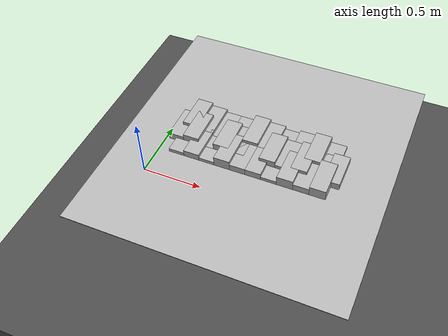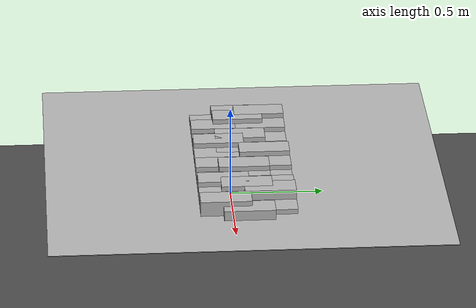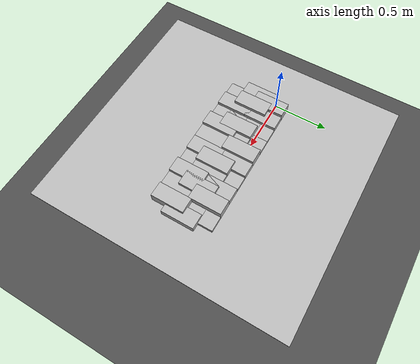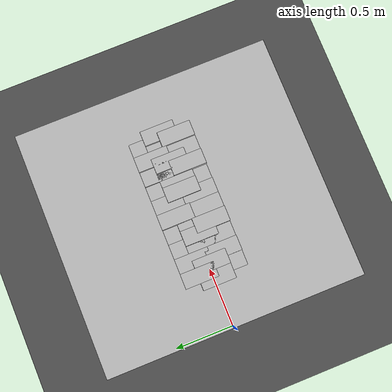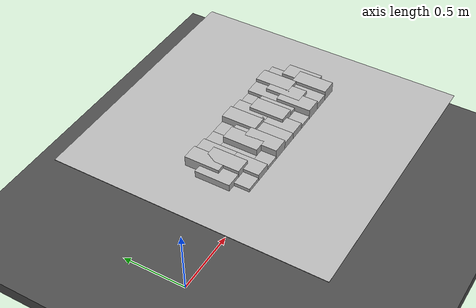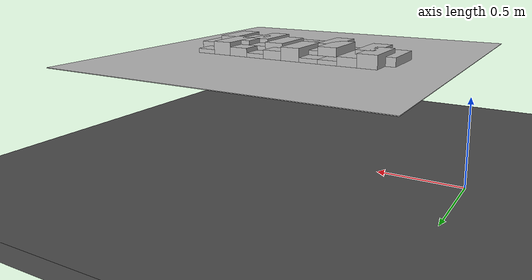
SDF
<sdf version="1.6">
 <world name="default">
  <model name="ground_plane">
   <static>1</static>
   <link name="link">
    <collision name="collision">
     <geometry><plane><normal>0 0 1</normal><size>100 100</size></plane></geometry>
     <surface><friction><ode><mu>100</mu><mu2>50</mu2></ode></friction></surface>
    </collision>
    <visual name="visual">
     <cast_shadows>0</cast_shadows>
     <geometry><plane><normal>0 0 1</normal><size>100 100</size></plane></geometry>
     <material>
      <script><uri>file://media/materials/scripts/gazebo.material</uri><name>Gazebo/Grey</name></script>
     </material>
    </visual>
   </link>
  </model>
  <model name="frc2016_roughterrain_0">
   <link name="link_clone_0">
    <pose>1.10114 -0.027351 -0.073164 0 -0 0</pose>
    <inertial>
     <inertia><ixx>nan</ixx><ixy>0</ixy><ixz>0</ixz><iyy>nan</iyy><iyz>0</iyz><izz>nan</izz></inertia>
     <mass>0</mass>
    </inertial>
    <visual name="row1_block4_sm">
     <pose>0.17145 0.1143 0.09698 0 -0 0</pose>
     <geometry><box><size>0.115452 0.257474 0.0254</size></box></geometry>
     <material><shader type="pixel"/></material>
    </visual>
    <visual name="platform">
     <pose>0 0 0.08269 0 -0 0</pose>
     <geometry><box><size>1.91826 2.01688 0.003175</size></box></geometry>
     <material><shader type="pixel"/></material>
    </visual>
    <visual name="row1_block1_sm">
     <pose>0.51435 0.1143 0.09698 0 -0 0</pose>
     <geometry><box><size>0.115452 0.257474 0.0254</size></box></geometry>
     <material><shader type="pixel"/></material>
    </visual>
    <visual name="row1_block3_md">
     <pose>0.28575 0.1143 0.10968 0 -0 0</pose>
     <geometry><box><size>0.115452 0.257474 0.0508</size></box></geometry>
     <material><shader type="pixel"/></material>
    </visual>
    <visual name="row1_block2_lg">
     <pose>0.40005 0.1143 0.12238 0 -0 0</pose>
     <geometry><box><size>0.115452 0.257474 0.0762</size></box></geometry>
     <material><shader type="pixel"/></material>
    </visual>
    <visual name="row1_block5_md">
     <pose>0.05715 0.1143 0.10968 0 -0 0</pose>
     <geometry><box><size>0.115452 0.257474 0.0508</size></box></geometry>
     <material><shader type="pixel"/></material>
    </visual>
    <visual name="row1_block6_lg">
     <pose>-0.05715 0.1143 0.12238 0 -0 0</pose>
     <geometry><box><size>0.115452 0.257474 0.0762</size></box></geometry>
     <material><shader type="pixel"/></material>
    </visual>
    <visual name="row1_block7_sm">
     <pose>-0.17145 0.1143 0.09698 0 -0 0</pose>
     <geometry><box><size>0.115452 0.257474 0.0254</size></box></geometry>
     <material><shader type="pixel"/></material>
    </visual>
    <visual name="row1_block8_sm">
     <pose>-0.28575 0.1143 0.09698 0 -0 0</pose>
     <geometry><box><size>0.115452 0.257474 0.0254</size></box></geometry>
     <material><shader type="pixel"/></material>
    </visual>
    <visual name="row1_block9_md">
     <pose>-0.40005 0.1143 0.10968 0 -0 0</pose>
     <geometry><box><size>0.115452 0.257474 0.0508</size></box></geometry>
     <material><shader type="pixel"/></material>
    </visual>
    <visual name="row1_block10_lg">
     <pose>-0.51435 0.1143 0.12238 0 -0 0</pose>
     <geometry><box><size>0.115452 0.257474 0.0762</size></box></geometry>
     <material><shader type="pixel"/></material>
    </visual>
    <visual name="row2_block1_md">
     <pose>0.5715 0 0.10968 0 -0 0</pose>
     <geometry><box><size>0.115452 0.257474 0.0508</size></box></geometry>
     <material><shader type="pixel"/></material>
    </visual>
    <visual name="row2_block2_sm">
     <pose>0.4572 0 0.09698 0 -0 0</pose>
     <geometry><box><size>0.115452 0.257474 0.0254</size></box></geometry>
     <material><shader type="pixel"/></material>
    </visual>
    <visual name="row2_block3_lg">
     <pose>0.3429 0 0.12238 0 -0 0</pose>
     <geometry><box><size>0.115452 0.257474 0.0762</size></box></geometry>
     <material><shader type="pixel"/></material>
    </visual>
    <visual name="row2_block4_md">
     <pose>0.2286 0 0.10968 0 -0 0</pose>
     <geometry><box><size>0.115452 0.257474 0.0508</size></box></geometry>
     <material><shader type="pixel"/></material>
    </visual>
    <visual name="row2_block5_lg">
     <pose>0.1143 0 0.12238 0 -0 0</pose>
     <geometry><box><size>0.115452 0.257474 0.0762</size></box></geometry>
     <material><shader type="pixel"/></material>
    </visual>
    <visual name="row2_block6_sm">
     <pose>0 0 0.09698 0 -0 0</pose>
     <geometry><box><size>0.115452 0.257474 0.0254</size></box></geometry>
     <material><shader type="pixel"/></material>
    </visual>
    <visual name="row2_block7_md">
     <pose>-0.1143 0 0.10968 0 -0 0</pose>
     <geometry><box><size>0.115452 0.257474 0.0508</size></box></geometry>
     <material><shader type="pixel"/></material>
    </visual>
    <visual name="row2_block8_lg">
     <pose>-0.2286 0 0.12238 0 -0 0</pose>
     <geometry><box><size>0.115452 0.257474 0.0762</size></box></geometry>
     <material><shader type="pixel"/></material>
    </visual>
    <visual name="row2_block9_sm">
     <pose>-0.3429 0 0.09698 0 -0 0</pose>
     <geometry><box><size>0.115452 0.257474 0.0254</size></box></geometry>
     <material><shader type="pixel"/></material>
    </visual>
    <visual name="row2_block10_lg">
     <pose>-0.4572 0 0.12238 0 -0 0</pose>
     <geometry><box><size>0.115452 0.257474 0.0762</size></box></geometry>
     <material><shader type="pixel"/></material>
    </visual>
    <visual name="row2_block11_md">
     <pose>-0.5715 0 0.10968 0 -0 0</pose>
     <geometry><box><size>0.115452 0.257474 0.0508</size></box></geometry>
     <material><shader type="pixel"/></material>
    </visual>
    <visual name="row3_block2_md">
     <pose>0.40005 -0.1143 0.10968 0 -0 0</pose>
     <geometry><box><size>0.115452 0.257474 0.0508</size></box></geometry>
     <material><shader type="pixel"/></material>
    </visual>
    <visual name="row3_block1_lg">
     <pose>0.51435 -0.1143 0.12238 0 -0 0</pose>
     <geometry><box><size>0.115452 0.257474 0.0762</size></box></geometry>
     <material><shader type="pixel"/></material>
    </visual>
    <visual name="row3_block3_lg">
     <pose>0.28575 -0.1143 0.12238 0 -0 0</pose>
     <geometry><box><size>0.115452 0.257474 0.0762</size></box></geometry>
     <material><shader type="pixel"/></material>
    </visual>
    <visual name="row3_block4_sm">
     <pose>0.17145 -0.1143 0.09698 0 -0 0</pose>
     <geometry><box><size>0.115452 0.257474 0.0254</size></box></geometry>
     <material><shader type="pixel"/></material>
    </visual>
    <visual name="row3_block5_md">
     <pose>0.05715 -0.1143 0.10968 0 -0 0</pose>
     <geometry><box><size>0.115452 0.257474 0.0508</size></box></geometry>
     <material><shader type="pixel"/></material>
    </visual>
    <visual name="row3_block6_md">
     <pose>-0.05715 -0.1143 0.10968 0 -0 0</pose>
     <geometry><box><size>0.115452 0.257474 0.0508</size></box></geometry>
     <material><shader type="pixel"/></material>
    </visual>
    <visual name="row3_block8_sm">
     <pose>-0.28575 -0.1143 0.09698 0 -0 0</pose>
     <geometry><box><size>0.115452 0.257474 0.0254</size></box></geometry>
     <material><shader type="pixel"/></material>
    </visual>
    <visual name="row3_block7_lg">
     <pose>-0.17145 -0.1143 0.12238 0 -0 0</pose>
     <geometry><box><size>0.115452 0.257474 0.0762</size></box></geometry>
     <material><shader type="pixel"/></material>
    </visual>
    <visual name="row3_block9_md">
     <pose>-0.40005 -0.1143 0.10968 0 -0 0</pose>
     <geometry><box><size>0.115452 0.257474 0.0508</size></box></geometry>
     <material><shader type="pixel"/></material>
    </visual>
    <visual name="row3_block10_sm">
     <pose>-0.51435 -0.1143 0.09698 0 -0 0</pose>
     <geometry><box><size>0.115452 0.257474 0.0254</size></box></geometry>
     <material><shader type="pixel"/></material>
    </visual>
    <collision name="row2_block5_lg_0">
     <pose>0.1143 0 0.12238 0 -0 0</pose>
     <geometry><box><size>0.115452 0.257474 0.0762</size></box></geometry>
     <surface>
      <friction>
       <ode><mu>1</mu><mu2>1</mu2><fdir1>0 0 0</fdir1><slip1>0</slip1><slip2>0</slip2></ode>
       <torsional>
        <coefficient>1</coefficient>
        <patch_radius>0</patch_radius>
        <surface_radius>0</surface_radius>
        <use_patch_radius>1</use_patch_radius>
        <ode><slip>0</slip></ode>
       </torsional>
      </friction>
      <bounce><restitution_coefficient>0</restitution_coefficient><threshold>1e+06</threshold></bounce>
      <contact>
       <collide_without_contact>0</collide_without_contact>
       <collide_without_contact_bitmask>1</collide_without_contact_bitmask>
       <collide_bitmask>1</collide_bitmask>
       <ode>
        <soft_cfm>0</soft_cfm>
        <soft_erp>0.2</soft_erp>
        <kp>1e+13</kp>
        <kd>1</kd>
        <max_vel>0.01</max_vel>
        <min_depth>0</min_depth>
       </ode>
       <bullet>
        <split_impulse>1</split_impulse>
        <split_impulse_penetration_threshold>-0.01</split_impulse_penetration_threshold>
        <soft_cfm>0</soft_cfm>
        <soft_erp>0.2</soft_erp>
        <kp>1e+13</kp>
        <kd>1</kd>
       </bullet>
      </contact>
     </surface>
    </collision>
    <collision name="platform_0">
     <pose>0 0 0.08269 0 -0 0</pose>
     <geometry><box><size>1.91826 2.01688 0.003175</size></box></geometry>
     <surface>
      <friction>
       <ode><mu>1</mu><mu2>1</mu2><fdir1>0 0 0</fdir1><slip1>0</slip1><slip2>0</slip2></ode>
       <torsional>
        <coefficient>1</coefficient>
        <patch_radius>0</patch_radius>
        <surface_radius>0</surface_radius>
        <use_patch_radius>1</use_patch_radius>
        <ode><slip>0</slip></ode>
       </torsional>
      </friction>
      <bounce><restitution_coefficient>0</restitution_coefficient><threshold>1e+06</threshold></bounce>
      <contact>
       <collide_without_contact>0</collide_without_contact>
       <collide_without_contact_bitmask>1</collide_without_contact_bitmask>
       <collide_bitmask>1</collide_bitmask>
       <ode>
        <soft_cfm>0</soft_cfm>
        <soft_erp>0.2</soft_erp>
        <kp>1e+13</kp>
        <kd>1</kd>
        <max_vel>0.01</max_vel>
        <min_depth>0</min_depth>
       </ode>
       <bullet>
        <split_impulse>1</split_impulse>
        <split_impulse_penetration_threshold>-0.01</split_impulse_penetration_threshold>
        <soft_cfm>0</soft_cfm>
        <soft_erp>0.2</soft_erp>
        <kp>1e+13</kp>
        <kd>1</kd>
       </bullet>
      </contact>
     </surface>
    </collision>
    <collision name="row1_block1_sm_0">
     <pose>0.51435 0.1143 0.09698 0 -0 0</pose>
     <geometry><box><size>0.115452 0.257474 0.0254</size></box></geometry>
     <surface>
      <friction>
       <ode><mu>1</mu><mu2>1</mu2><fdir1>0 0 0</fdir1><slip1>0</slip1><slip2>0</slip2></ode>
       <torsional>
        <coefficient>1</coefficient>
        <patch_radius>0</patch_radius>
        <surface_radius>0</surface_radius>
        <use_patch_radius>1</use_patch_radius>
        <ode><slip>0</slip></ode>
       </torsional>
      </friction>
      <bounce><restitution_coefficient>0</restitution_coefficient><threshold>1e+06</threshold></bounce>
      <contact>
       <collide_without_contact>0</collide_without_contact>
       <collide_without_contact_bitmask>1</collide_without_contact_bitmask>
       <collide_bitmask>1</collide_bitmask>
       <ode>
        <soft_cfm>0</soft_cfm>
        <soft_erp>0.2</soft_erp>
        <kp>1e+13</kp>
        <kd>1</kd>
        <max_vel>0.01</max_vel>
        <min_depth>0</min_depth>
       </ode>
       <bullet>
        <split_impulse>1</split_impulse>
        <split_impulse_penetration_threshold>-0.01</split_impulse_penetration_threshold>
        <soft_cfm>0</soft_cfm>
        <soft_erp>0.2</soft_erp>
        <kp>1e+13</kp>
        <kd>1</kd>
       </bullet>
      </contact>
     </surface>
    </collision>
    <collision name="row1_block5_md_0">
     <pose>0.05715 0.1143 0.10968 0 -0 0</pose>
     <geometry><box><size>0.115452 0.257474 0.0508</size></box></geometry>
     <surface>
      <friction>
       <ode><mu>1</mu><mu2>1</mu2><fdir1>0 0 0</fdir1><slip1>0</slip1><slip2>0</slip2></ode>
       <torsional>
        <coefficient>1</coefficient>
        <patch_radius>0</patch_radius>
        <surface_radius>0</surface_radius>
        <use_patch_radius>1</use_patch_radius>
        <ode><slip>0</slip></ode>
       </torsional>
      </friction>
      <bounce><restitution_coefficient>0</restitution_coefficient><threshold>1e+06</threshold></bounce>
      <contact>
       <collide_without_contact>0</collide_without_contact>
       <collide_without_contact_bitmask>1</collide_without_contact_bitmask>
       <collide_bitmask>1</collide_bitmask>
       <ode>
        <soft_cfm>0</soft_cfm>
        <soft_erp>0.2</soft_erp>
        <kp>1e+13</kp>
        <kd>1</kd>
        <max_vel>0.01</max_vel>
        <min_depth>0</min_depth>
       </ode>
       <bullet>
        <split_impulse>1</split_impulse>
        <split_impulse_penetration_threshold>-0.01</split_impulse_penetration_threshold>
        <soft_cfm>0</soft_cfm>
        <soft_erp>0.2</soft_erp>
        <kp>1e+13</kp>
        <kd>1</kd>
       </bullet>
      </contact>
     </surface>
    </collision>
    <collision name="row1_block3_md_0">
     <pose>0.28575 0.1143 0.10968 0 -0 0</pose>
     <geometry><box><size>0.115452 0.257474 0.0508</size></box></geometry>
     <surface>
      <friction>
       <ode><mu>1</mu><mu2>1</mu2><fdir1>0 0 0</fdir1><slip1>0</slip1><slip2>0</slip2></ode>
       <torsional>
        <coefficient>1</coefficient>
        <patch_radius>0</patch_radius>
        <surface_radius>0</surface_radius>
        <use_patch_radius>1</use_patch_radius>
        <ode><slip>0</slip></ode>
       </torsional>
      </friction>
      <bounce><restitution_coefficient>0</restitution_coefficient><threshold>1e+06</threshold></bounce>
      <contact>
       <collide_without_contact>0</collide_without_contact>
       <collide_without_contact_bitmask>1</collide_without_contact_bitmask>
       <collide_bitmask>1</collide_bitmask>
       <ode>
        <soft_cfm>0</soft_cfm>
        <soft_erp>0.2</soft_erp>
        <kp>1e+13</kp>
        <kd>1</kd>
        <max_vel>0.01</max_vel>
        <min_depth>0</min_depth>
       </ode>
       <bullet>
        <split_impulse>1</split_impulse>
        <split_impulse_penetration_threshold>-0.01</split_impulse_penetration_threshold>
        <soft_cfm>0</soft_cfm>
        <soft_erp>0.2</soft_erp>
        <kp>1e+13</kp>
        <kd>1</kd>
       </bullet>
      </contact>
     </surface>
    </collision>
    <collision name="row1_block2_lg_0">
     <pose>0.40005 0.1143 0.12238 0 -0 0</pose>
     <geometry><box><size>0.115452 0.257474 0.0762</size></box></geometry>
     <surface>
      <friction>
       <ode><mu>1</mu><mu2>1</mu2><fdir1>0 0 0</fdir1><slip1>0</slip1><slip2>0</slip2></ode>
       <torsional>
        <coefficient>1</coefficient>
        <patch_radius>0</patch_radius>
        <surface_radius>0</surface_radius>
        <use_patch_radius>1</use_patch_radius>
        <ode><slip>0</slip></ode>
       </torsional>
      </friction>
      <bounce><restitution_coefficient>0</restitution_coefficient><threshold>1e+06</threshold></bounce>
      <contact>
       <collide_without_contact>0</collide_without_contact>
       <collide_without_contact_bitmask>1</collide_without_contact_bitmask>
       <collide_bitmask>1</collide_bitmask>
       <ode>
        <soft_cfm>0</soft_cfm>
        <soft_erp>0.2</soft_erp>
        <kp>1e+13</kp>
        <kd>1</kd>
        <max_vel>0.01</max_vel>
        <min_depth>0</min_depth>
       </ode>
       <bullet>
        <split_impulse>1</split_impulse>
        <split_impulse_penetration_threshold>-0.01</split_impulse_penetration_threshold>
        <soft_cfm>0</soft_cfm>
        <soft_erp>0.2</soft_erp>
        <kp>1e+13</kp>
        <kd>1</kd>
       </bullet>
      </contact>
     </surface>
    </collision>
    <collision name="row1_block4_sm_0">
     <pose>0.17145 0.1143 0.09698 0 -0 0</pose>
     <geometry><box><size>0.115452 0.257474 0.0254</size></box></geometry>
     <surface>
      <friction>
       <ode><mu>1</mu><mu2>1</mu2><fdir1>0 0 0</fdir1><slip1>0</slip1><slip2>0</slip2></ode>
       <torsional>
        <coefficient>1</coefficient>
        <patch_radius>0</patch_radius>
        <surface_radius>0</surface_radius>
        <use_patch_radius>1</use_patch_radius>
        <ode><slip>0</slip></ode>
       </torsional>
      </friction>
      <bounce><restitution_coefficient>0</restitution_coefficient><threshold>1e+06</threshold></bounce>
      <contact>
       <collide_without_contact>0</collide_without_contact>
       <collide_without_contact_bitmask>1</collide_without_contact_bitmask>
       <collide_bitmask>1</collide_bitmask>
       <ode>
        <soft_cfm>0</soft_cfm>
        <soft_erp>0.2</soft_erp>
        <kp>1e+13</kp>
        <kd>1</kd>
        <max_vel>0.01</max_vel>
        <min_depth>0</min_depth>
       </ode>
       <bullet>
        <split_impulse>1</split_impulse>
        <split_impulse_penetration_threshold>-0.01</split_impulse_penetration_threshold>
        <soft_cfm>0</soft_cfm>
        <soft_erp>0.2</soft_erp>
        <kp>1e+13</kp>
        <kd>1</kd>
       </bullet>
      </contact>
     </surface>
    </collision>
    <collision name="row1_block6_lg_0">
     <pose>-0.05715 0.1143 0.12238 0 -0 0</pose>
     <geometry><box><size>0.115452 0.257474 0.0762</size></box></geometry>
     <surface>
      <friction>
       <ode><mu>1</mu><mu2>1</mu2><fdir1>0 0 0</fdir1><slip1>0</slip1><slip2>0</slip2></ode>
       <torsional>
        <coefficient>1</coefficient>
        <patch_radius>0</patch_radius>
        <surface_radius>0</surface_radius>
        <use_patch_radius>1</use_patch_radius>
        <ode><slip>0</slip></ode>
       </torsional>
      </friction>
      <bounce><restitution_coefficient>0</restitution_coefficient><threshold>1e+06</threshold></bounce>
      <contact>
       <collide_without_contact>0</collide_without_contact>
       <collide_without_contact_bitmask>1</collide_without_contact_bitmask>
       <collide_bitmask>1</collide_bitmask>
       <ode>
        <soft_cfm>0</soft_cfm>
        <soft_erp>0.2</soft_erp>
        <kp>1e+13</kp>
        <kd>1</kd>
        <max_vel>0.01</max_vel>
        <min_depth>0</min_depth>
       </ode>
       <bullet>
        <split_impulse>1</split_impulse>
        <split_impulse_penetration_threshold>-0.01</split_impulse_penetration_threshold>
        <soft_cfm>0</soft_cfm>
        <soft_erp>0.2</soft_erp>
        <kp>1e+13</kp>
        <kd>1</kd>
       </bullet>
      </contact>
     </surface>
    </collision>
    <collision name="row1_block8_sm_0">
     <pose>-0.28575 0.1143 0.09698 0 -0 0</pose>
     <geometry><box><size>0.115452 0.257474 0.0254</size></box></geometry>
     <surface>
      <friction>
       <ode><mu>1</mu><mu2>1</mu2><fdir1>0 0 0</fdir1><slip1>0</slip1><slip2>0</slip2></ode>
       <torsional>
        <coefficient>1</coefficient>
        <patch_radius>0</patch_radius>
        <surface_radius>0</surface_radius>
        <use_patch_radius>1</use_patch_radius>
        <ode><slip>0</slip></ode>
       </torsional>
      </friction>
      <bounce><restitution_coefficient>0</restitution_coefficient><threshold>1e+06</threshold></bounce>
      <contact>
       <collide_without_contact>0</collide_without_contact>
       <collide_without_contact_bitmask>1</collide_without_contact_bitmask>
       <collide_bitmask>1</collide_bitmask>
       <ode>
        <soft_cfm>0</soft_cfm>
        <soft_erp>0.2</soft_erp>
        <kp>1e+13</kp>
        <kd>1</kd>
        <max_vel>0.01</max_vel>
        <min_depth>0</min_depth>
       </ode>
       <bullet>
        <split_impulse>1</split_impulse>
        <split_impulse_penetration_threshold>-0.01</split_impulse_penetration_threshold>
        <soft_cfm>0</soft_cfm>
        <soft_erp>0.2</soft_erp>
        <kp>1e+13</kp>
        <kd>1</kd>
       </bullet>
      </contact>
     </surface>
    </collision>
    <collision name="row1_block7_sm_0">
     <pose>-0.17145 0.1143 0.09698 0 -0 0</pose>
     <geometry><box><size>0.115452 0.257474 0.0254</size></box></geometry>
     <surface>
      <friction>
       <ode><mu>1</mu><mu2>1</mu2><fdir1>0 0 0</fdir1><slip1>0</slip1><slip2>0</slip2></ode>
       <torsional>
        <coefficient>1</coefficient>
        <patch_radius>0</patch_radius>
        <surface_radius>0</surface_radius>
        <use_patch_radius>1</use_patch_radius>
        <ode><slip>0</slip></ode>
       </torsional>
      </friction>
      <bounce><restitution_coefficient>0</restitution_coefficient><threshold>1e+06</threshold></bounce>
      <contact>
       <collide_without_contact>0</collide_without_contact>
       <collide_without_contact_bitmask>1</collide_without_contact_bitmask>
       <collide_bitmask>1</collide_bitmask>
       <ode>
        <soft_cfm>0</soft_cfm>
        <soft_erp>0.2</soft_erp>
        <kp>1e+13</kp>
        <kd>1</kd>
        <max_vel>0.01</max_vel>
        <min_depth>0</min_depth>
       </ode>
       <bullet>
        <split_impulse>1</split_impulse>
        <split_impulse_penetration_threshold>-0.01</split_impulse_penetration_threshold>
        <soft_cfm>0</soft_cfm>
        <soft_erp>0.2</soft_erp>
        <kp>1e+13</kp>
        <kd>1</kd>
       </bullet>
      </contact>
     </surface>
    </collision>
    <collision name="row1_block10_lg_0">
     <pose>-0.51435 0.1143 0.12238 0 -0 0</pose>
     <geometry><box><size>0.115452 0.257474 0.0762</size></box></geometry>
     <surface>
      <friction>
       <ode><mu>1</mu><mu2>1</mu2><fdir1>0 0 0</fdir1><slip1>0</slip1><slip2>0</slip2></ode>
       <torsional>
        <coefficient>1</coefficient>
        <patch_radius>0</patch_radius>
        <surface_radius>0</surface_radius>
        <use_patch_radius>1</use_patch_radius>
        <ode><slip>0</slip></ode>
       </torsional>
      </friction>
      <bounce><restitution_coefficient>0</restitution_coefficient><threshold>1e+06</threshold></bounce>
      <contact>
       <collide_without_contact>0</collide_without_contact>
       <collide_without_contact_bitmask>1</collide_without_contact_bitmask>
       <collide_bitmask>1</collide_bitmask>
       <ode>
        <soft_cfm>0</soft_cfm>
        <soft_erp>0.2</soft_erp>
        <kp>1e+13</kp>
        <kd>1</kd>
        <max_vel>0.01</max_vel>
        <min_depth>0</min_depth>
       </ode>
       <bullet>
        <split_impulse>1</split_impulse>
        <split_impulse_penetration_threshold>-0.01</split_impulse_penetration_threshold>
        <soft_cfm>0</soft_cfm>
        <soft_erp>0.2</soft_erp>
        <kp>1e+13</kp>
        <kd>1</kd>
       </bullet>
      </contact>
     </surface>
    </collision>
    <collision name="row1_block9_md_0">
     <pose>-0.40005 0.1143 0.10968 0 -0 0</pose>
     <geometry><box><size>0.115452 0.257474 0.0508</size></box></geometry>
     <surface>
      <friction>
       <ode><mu>1</mu><mu2>1</mu2><fdir1>0 0 0</fdir1><slip1>0</slip1><slip2>0</slip2></ode>
       <torsional>
        <coefficient>1</coefficient>
        <patch_radius>0</patch_radius>
        <surface_radius>0</surface_radius>
        <use_patch_radius>1</use_patch_radius>
        <ode><slip>0</slip></ode>
       </torsional>
      </friction>
      <bounce><restitution_coefficient>0</restitution_coefficient><threshold>1e+06</threshold></bounce>
      <contact>
       <collide_without_contact>0</collide_without_contact>
       <collide_without_contact_bitmask>1</collide_without_contact_bitmask>
       <collide_bitmask>1</collide_bitmask>
       <ode>
        <soft_cfm>0</soft_cfm>
        <soft_erp>0.2</soft_erp>
        <kp>1e+13</kp>
        <kd>1</kd>
        <max_vel>0.01</max_vel>
        <min_depth>0</min_depth>
       </ode>
       <bullet>
        <split_impulse>1</split_impulse>
        <split_impulse_penetration_threshold>-0.01</split_impulse_penetration_threshold>
        <soft_cfm>0</soft_cfm>
        <soft_erp>0.2</soft_erp>
        <kp>1e+13</kp>
        <kd>1</kd>
       </bullet>
      </contact>
     </surface>
    </collision>
    <collision name="row2_block4_md_0">
     <pose>0.2286 0 0.10968 0 -0 0</pose>
     <geometry><box><size>0.115452 0.257474 0.0508</size></box></geometry>
     <surface>
      <friction>
       <ode><mu>1</mu><mu2>1</mu2><fdir1>0 0 0</fdir1><slip1>0</slip1><slip2>0</slip2></ode>
       <torsional>
        <coefficient>1</coefficient>
        <patch_radius>0</patch_radius>
        <surface_radius>0</surface_radius>
        <use_patch_radius>1</use_patch_radius>
        <ode><slip>0</slip></ode>
       </torsional>
      </friction>
      <bounce><restitution_coefficient>0</restitution_coefficient><threshold>1e+06</threshold></bounce>
      <contact>
       <collide_without_contact>0</collide_without_contact>
       <collide_without_contact_bitmask>1</collide_without_contact_bitmask>
       <collide_bitmask>1</collide_bitmask>
       <ode>
        <soft_cfm>0</soft_cfm>
        <soft_erp>0.2</soft_erp>
        <kp>1e+13</kp>
        <kd>1</kd>
        <max_vel>0.01</max_vel>
        <min_depth>0</min_depth>
       </ode>
       <bullet>
        <split_impulse>1</split_impulse>
        <split_impulse_penetration_threshold>-0.01</split_impulse_penetration_threshold>
        <soft_cfm>0</soft_cfm>
        <soft_erp>0.2</soft_erp>
        <kp>1e+13</kp>
        <kd>1</kd>
       </bullet>
      </contact>
     </surface>
    </collision>
    <collision name="row2_block1_md_0">
     <pose>0.5715 0 0.10968 0 -0 0</pose>
     <geometry><box><size>0.115452 0.257474 0.0508</size></box></geometry>
     <surface>
      <friction>
       <ode><mu>1</mu><mu2>1</mu2><fdir1>0 0 0</fdir1><slip1>0</slip1><slip2>0</slip2></ode>
       <torsional>
        <coefficient>1</coefficient>
        <patch_radius>0</patch_radius>
        <surface_radius>0</surface_radius>
        <use_patch_radius>1</use_patch_radius>
        <ode><slip>0</slip></ode>
       </torsional>
      </friction>
      <bounce><restitution_coefficient>0</restitution_coefficient><threshold>1e+06</threshold></bounce>
      <contact>
       <collide_without_contact>0</collide_without_contact>
       <collide_without_contact_bitmask>1</collide_without_contact_bitmask>
       <collide_bitmask>1</collide_bitmask>
       <ode>
        <soft_cfm>0</soft_cfm>
        <soft_erp>0.2</soft_erp>
        <kp>1e+13</kp>
        <kd>1</kd>
        <max_vel>0.01</max_vel>
        <min_depth>0</min_depth>
       </ode>
       <bullet>
        <split_impulse>1</split_impulse>
        <split_impulse_penetration_threshold>-0.01</split_impulse_penetration_threshold>
        <soft_cfm>0</soft_cfm>
        <soft_erp>0.2</soft_erp>
        <kp>1e+13</kp>
        <kd>1</kd>
       </bullet>
      </contact>
     </surface>
    </collision>
    <collision name="row2_block2_sm_0">
     <pose>0.4572 0 0.09698 0 -0 0</pose>
     <geometry><box><size>0.115452 0.257474 0.0254</size></box></geometry>
     <surface>
      <friction>
       <ode><mu>1</mu><mu2>1</mu2><fdir1>0 0 0</fdir1><slip1>0</slip1><slip2>0</slip2></ode>
       <torsional>
        <coefficient>1</coefficient>
        <patch_radius>0</patch_radius>
        <surface_radius>0</surface_radius>
        <use_patch_radius>1</use_patch_radius>
        <ode><slip>0</slip></ode>
       </torsional>
      </friction>
      <bounce><restitution_coefficient>0</restitution_coefficient><threshold>1e+06</threshold></bounce>
      <contact>
       <collide_without_contact>0</collide_without_contact>
       <collide_without_contact_bitmask>1</collide_without_contact_bitmask>
       <collide_bitmask>1</collide_bitmask>
       <ode>
        <soft_cfm>0</soft_cfm>
        <soft_erp>0.2</soft_erp>
        <kp>1e+13</kp>
        <kd>1</kd>
        <max_vel>0.01</max_vel>
        <min_depth>0</min_depth>
       </ode>
       <bullet>
        <split_impulse>1</split_impulse>
        <split_impulse_penetration_threshold>-0.01</split_impulse_penetration_threshold>
        <soft_cfm>0</soft_cfm>
        <soft_erp>0.2</soft_erp>
        <kp>1e+13</kp>
        <kd>1</kd>
       </bullet>
      </contact>
     </surface>
    </collision>
    <collision name="row2_block3_lg_0">
     <pose>0.3429 0 0.12238 0 -0 0</pose>
     <geometry><box><size>0.115452 0.257474 0.0762</size></box></geometry>
     <surface>
      <friction>
       <ode><mu>1</mu><mu2>1</mu2><fdir1>0 0 0</fdir1><slip1>0</slip1><slip2>0</slip2></ode>
       <torsional>
        <coefficient>1</coefficient>
        <patch_radius>0</patch_radius>
        <surface_radius>0</surface_radius>
        <use_patch_radius>1</use_patch_radius>
        <ode><slip>0</slip></ode>
       </torsional>
      </friction>
      <bounce><restitution_coefficient>0</restitution_coefficient><threshold>1e+06</threshold></bounce>
      <contact>
       <collide_without_contact>0</collide_without_contact>
       <collide_without_contact_bitmask>1</collide_without_contact_bitmask>
       <collide_bitmask>1</collide_bitmask>
       <ode>
        <soft_cfm>0</soft_cfm>
        <soft_erp>0.2</soft_erp>
        <kp>1e+13</kp>
        <kd>1</kd>
        <max_vel>0.01</max_vel>
        <min_depth>0</min_depth>
       </ode>
       <bullet>
        <split_impulse>1</split_impulse>
        <split_impulse_penetration_threshold>-0.01</split_impulse_penetration_threshold>
        <soft_cfm>0</soft_cfm>
        <soft_erp>0.2</soft_erp>
        <kp>1e+13</kp>
        <kd>1</kd>
       </bullet>
      </contact>
     </surface>
    </collision>
    <collision name="row2_block6_sm_0">
     <pose>0 0 0.09698 0 -0 0</pose>
     <geometry><box><size>0.115452 0.257474 0.0254</size></box></geometry>
     <surface>
      <friction>
       <ode><mu>1</mu><mu2>1</mu2><fdir1>0 0 0</fdir1><slip1>0</slip1><slip2>0</slip2></ode>
       <torsional>
        <coefficient>1</coefficient>
        <patch_radius>0</patch_radius>
        <surface_radius>0</surface_radius>
        <use_patch_radius>1</use_patch_radius>
        <ode><slip>0</slip></ode>
       </torsional>
      </friction>
      <bounce><restitution_coefficient>0</restitution_coefficient><threshold>1e+06</threshold></bounce>
      <contact>
       <collide_without_contact>0</collide_without_contact>
       <collide_without_contact_bitmask>1</collide_without_contact_bitmask>
       <collide_bitmask>1</collide_bitmask>
       <ode>
        <soft_cfm>0</soft_cfm>
        <soft_erp>0.2</soft_erp>
        <kp>1e+13</kp>
        <kd>1</kd>
        <max_vel>0.01</max_vel>
        <min_depth>0</min_depth>
       </ode>
       <bullet>
        <split_impulse>1</split_impulse>
        <split_impulse_penetration_threshold>-0.01</split_impulse_penetration_threshold>
        <soft_cfm>0</soft_cfm>
        <soft_erp>0.2</soft_erp>
        <kp>1e+13</kp>
        <kd>1</kd>
       </bullet>
      </contact>
     </surface>
    </collision>
    <collision name="row2_block7_md_0">
     <pose>-0.1143 0 0.10968 0 -0 0</pose>
     <geometry><box><size>0.115452 0.257474 0.0508</size></box></geometry>
     <surface>
      <friction>
       <ode><mu>1</mu><mu2>1</mu2><fdir1>0 0 0</fdir1><slip1>0</slip1><slip2>0</slip2></ode>
       <torsional>
        <coefficient>1</coefficient>
        <patch_radius>0</patch_radius>
        <surface_radius>0</surface_radius>
        <use_patch_radius>1</use_patch_radius>
        <ode><slip>0</slip></ode>
       </torsional>
      </friction>
      <bounce><restitution_coefficient>0</restitution_coefficient><threshold>1e+06</threshold></bounce>
      <contact>
       <collide_without_contact>0</collide_without_contact>
       <collide_without_contact_bitmask>1</collide_without_contact_bitmask>
       <collide_bitmask>1</collide_bitmask>
       <ode>
        <soft_cfm>0</soft_cfm>
        <soft_erp>0.2</soft_erp>
        <kp>1e+13</kp>
        <kd>1</kd>
        <max_vel>0.01</max_vel>
        <min_depth>0</min_depth>
       </ode>
       <bullet>
        <split_impulse>1</split_impulse>
        <split_impulse_penetration_threshold>-0.01</split_impulse_penetration_threshold>
        <soft_cfm>0</soft_cfm>
        <soft_erp>0.2</soft_erp>
        <kp>1e+13</kp>
        <kd>1</kd>
       </bullet>
      </contact>
     </surface>
    </collision>
    <collision name="row2_block10_lg_0">
     <pose>-0.4572 0 0.12238 0 -0 0</pose>
     <geometry><box><size>0.115452 0.257474 0.0762</size></box></geometry>
     <surface>
      <friction>
       <ode><mu>1</mu><mu2>1</mu2><fdir1>0 0 0</fdir1><slip1>0</slip1><slip2>0</slip2></ode>
       <torsional>
        <coefficient>1</coefficient>
        <patch_radius>0</patch_radius>
        <surface_radius>0</surface_radius>
        <use_patch_radius>1</use_patch_radius>
        <ode><slip>0</slip></ode>
       </torsional>
      </friction>
      <bounce><restitution_coefficient>0</restitution_coefficient><threshold>1e+06</threshold></bounce>
      <contact>
       <collide_without_contact>0</collide_without_contact>
       <collide_without_contact_bitmask>1</collide_without_contact_bitmask>
       <collide_bitmask>1</collide_bitmask>
       <ode>
        <soft_cfm>0</soft_cfm>
        <soft_erp>0.2</soft_erp>
        <kp>1e+13</kp>
        <kd>1</kd>
        <max_vel>0.01</max_vel>
        <min_depth>0</min_depth>
       </ode>
       <bullet>
        <split_impulse>1</split_impulse>
        <split_impulse_penetration_threshold>-0.01</split_impulse_penetration_threshold>
        <soft_cfm>0</soft_cfm>
        <soft_erp>0.2</soft_erp>
        <kp>1e+13</kp>
        <kd>1</kd>
       </bullet>
      </contact>
     </surface>
    </collision>
    <collision name="row2_block8_lg_0">
     <pose>-0.2286 0 0.12238 0 -0 0</pose>
     <geometry><box><size>0.115452 0.257474 0.0762</size></box></geometry>
     <surface>
      <friction>
       <ode><mu>1</mu><mu2>1</mu2><fdir1>0 0 0</fdir1><slip1>0</slip1><slip2>0</slip2></ode>
       <torsional>
        <coefficient>1</coefficient>
        <patch_radius>0</patch_radius>
        <surface_radius>0</surface_radius>
        <use_patch_radius>1</use_patch_radius>
        <ode><slip>0</slip></ode>
       </torsional>
      </friction>
      <bounce><restitution_coefficient>0</restitution_coefficient><threshold>1e+06</threshold></bounce>
      <contact>
       <collide_without_contact>0</collide_without_contact>
       <collide_without_contact_bitmask>1</collide_without_contact_bitmask>
       <collide_bitmask>1</collide_bitmask>
       <ode>
        <soft_cfm>0</soft_cfm>
        <soft_erp>0.2</soft_erp>
        <kp>1e+13</kp>
        <kd>1</kd>
        <max_vel>0.01</max_vel>
        <min_depth>0</min_depth>
       </ode>
       <bullet>
        <split_impulse>1</split_impulse>
        <split_impulse_penetration_threshold>-0.01</split_impulse_penetration_threshold>
        <soft_cfm>0</soft_cfm>
        <soft_erp>0.2</soft_erp>
        <kp>1e+13</kp>
        <kd>1</kd>
       </bullet>
      </contact>
     </surface>
    </collision>
    <collision name="row2_block9_sm_0">
     <pose>-0.3429 0 0.09698 0 -0 0</pose>
     <geometry><box><size>0.115452 0.257474 0.0254</size></box></geometry>
     <surface>
      <friction>
       <ode><mu>1</mu><mu2>1</mu2><fdir1>0 0 0</fdir1><slip1>0</slip1><slip2>0</slip2></ode>
       <torsional>
        <coefficient>1</coefficient>
        <patch_radius>0</patch_radius>
        <surface_radius>0</surface_radius>
        <use_patch_radius>1</use_patch_radius>
        <ode><slip>0</slip></ode>
       </torsional>
      </friction>
      <bounce><restitution_coefficient>0</restitution_coefficient><threshold>1e+06</threshold></bounce>
      <contact>
       <collide_without_contact>0</collide_without_contact>
       <collide_without_contact_bitmask>1</collide_without_contact_bitmask>
       <collide_bitmask>1</collide_bitmask>
       <ode>
        <soft_cfm>0</soft_cfm>
        <soft_erp>0.2</soft_erp>
        <kp>1e+13</kp>
        <kd>1</kd>
        <max_vel>0.01</max_vel>
        <min_depth>0</min_depth>
       </ode>
       <bullet>
        <split_impulse>1</split_impulse>
        <split_impulse_penetration_threshold>-0.01</split_impulse_penetration_threshold>
        <soft_cfm>0</soft_cfm>
        <soft_erp>0.2</soft_erp>
        <kp>1e+13</kp>
        <kd>1</kd>
       </bullet>
      </contact>
     </surface>
    </collision>
    <collision name="row2_block11_md_0">
     <pose>-0.5715 0 0.10968 0 -0 0</pose>
     <geometry><box><size>0.115452 0.257474 0.0508</size></box></geometry>
     <surface>
      <friction>
       <ode><mu>1</mu><mu2>1</mu2><fdir1>0 0 0</fdir1><slip1>0</slip1><slip2>0</slip2></ode>
       <torsional>
        <coefficient>1</coefficient>
        <patch_radius>0</patch_radius>
        <surface_radius>0</surface_radius>
        <use_patch_radius>1</use_patch_radius>
        <ode><slip>0</slip></ode>
       </torsional>
      </friction>
      <bounce><restitution_coefficient>0</restitution_coefficient><threshold>1e+06</threshold></bounce>
      <contact>
       <collide_without_contact>0</collide_without_contact>
       <collide_without_contact_bitmask>1</collide_without_contact_bitmask>
       <collide_bitmask>1</collide_bitmask>
       <ode>
        <soft_cfm>0</soft_cfm>
        <soft_erp>0.2</soft_erp>
        <kp>1e+13</kp>
        <kd>1</kd>
        <max_vel>0.01</max_vel>
        <min_depth>0</min_depth>
       </ode>
       <bullet>
        <split_impulse>1</split_impulse>
        <split_impulse_penetration_threshold>-0.01</split_impulse_penetration_threshold>
        <soft_cfm>0</soft_cfm>
        <soft_erp>0.2</soft_erp>
        <kp>1e+13</kp>
        <kd>1</kd>
       </bullet>
      </contact>
     </surface>
    </collision>
    <collision name="row3_block2_md_0">
     <pose>0.40005 -0.1143 0.10968 0 -0 0</pose>
     <geometry><box><size>0.115452 0.257474 0.0508</size></box></geometry>
     <surface>
      <friction>
       <ode><mu>1</mu><mu2>1</mu2><fdir1>0 0 0</fdir1><slip1>0</slip1><slip2>0</slip2></ode>
       <torsional>
        <coefficient>1</coefficient>
        <patch_radius>0</patch_radius>
        <surface_radius>0</surface_radius>
        <use_patch_radius>1</use_patch_radius>
        <ode><slip>0</slip></ode>
       </torsional>
      </friction>
      <bounce><restitution_coefficient>0</restitution_coefficient><threshold>1e+06</threshold></bounce>
      <contact>
       <collide_without_contact>0</collide_without_contact>
       <collide_without_contact_bitmask>1</collide_without_contact_bitmask>
       <collide_bitmask>1</collide_bitmask>
       <ode>
        <soft_cfm>0</soft_cfm>
        <soft_erp>0.2</soft_erp>
        <kp>1e+13</kp>
        <kd>1</kd>
        <max_vel>0.01</max_vel>
        <min_depth>0</min_depth>
       </ode>
       <bullet>
        <split_impulse>1</split_impulse>
        <split_impulse_penetration_threshold>-0.01</split_impulse_penetration_threshold>
        <soft_cfm>0</soft_cfm>
        <soft_erp>0.2</soft_erp>
        <kp>1e+13</kp>
        <kd>1</kd>
       </bullet>
      </contact>
     </surface>
    </collision>
    <collision name="row3_block1_lg_0">
     <pose>0.51435 -0.1143 0.12238 0 -0 0</pose>
     <geometry><box><size>0.115452 0.257474 0.0762</size></box></geometry>
     <surface>
      <friction>
       <ode><mu>1</mu><mu2>1</mu2><fdir1>0 0 0</fdir1><slip1>0</slip1><slip2>0</slip2></ode>
       <torsional>
        <coefficient>1</coefficient>
        <patch_radius>0</patch_radius>
        <surface_radius>0</surface_radius>
        <use_patch_radius>1</use_patch_radius>
        <ode><slip>0</slip></ode>
       </torsional>
      </friction>
      <bounce><restitution_coefficient>0</restitution_coefficient><threshold>1e+06</threshold></bounce>
      <contact>
       <collide_without_contact>0</collide_without_contact>
       <collide_without_contact_bitmask>1</collide_without_contact_bitmask>
       <collide_bitmask>1</collide_bitmask>
       <ode>
        <soft_cfm>0</soft_cfm>
        <soft_erp>0.2</soft_erp>
        <kp>1e+13</kp>
        <kd>1</kd>
        <max_vel>0.01</max_vel>
        <min_depth>0</min_depth>
       </ode>
       <bullet>
        <split_impulse>1</split_impulse>
        <split_impulse_penetration_threshold>-0.01</split_impulse_penetration_threshold>
        <soft_cfm>0</soft_cfm>
        <soft_erp>0.2</soft_erp>
        <kp>1e+13</kp>
        <kd>1</kd>
       </bullet>
      </contact>
     </surface>
    </collision>
    <collision name="row3_block5_md_0">
     <pose>0.05715 -0.1143 0.10968 0 -0 0</pose>
     <geometry><box><size>0.115452 0.257474 0.0508</size></box></geometry>
     <surface>
      <friction>
       <ode><mu>1</mu><mu2>1</mu2><fdir1>0 0 0</fdir1><slip1>0</slip1><slip2>0</slip2></ode>
       <torsional>
        <coefficient>1</coefficient>
        <patch_radius>0</patch_radius>
        <surface_radius>0</surface_radius>
        <use_patch_radius>1</use_patch_radius>
        <ode><slip>0</slip></ode>
       </torsional>
      </friction>
      <bounce><restitution_coefficient>0</restitution_coefficient><threshold>1e+06</threshold></bounce>
      <contact>
       <collide_without_contact>0</collide_without_contact>
       <collide_without_contact_bitmask>1</collide_without_contact_bitmask>
       <collide_bitmask>1</collide_bitmask>
       <ode>
        <soft_cfm>0</soft_cfm>
        <soft_erp>0.2</soft_erp>
        <kp>1e+13</kp>
        <kd>1</kd>
        <max_vel>0.01</max_vel>
        <min_depth>0</min_depth>
       </ode>
       <bullet>
        <split_impulse>1</split_impulse>
        <split_impulse_penetration_threshold>-0.01</split_impulse_penetration_threshold>
        <soft_cfm>0</soft_cfm>
        <soft_erp>0.2</soft_erp>
        <kp>1e+13</kp>
        <kd>1</kd>
       </bullet>
      </contact>
     </surface>
    </collision>
    <collision name="row3_block3_lg_0">
     <pose>0.28575 -0.1143 0.12238 0 -0 0</pose>
     <geometry><box><size>0.115452 0.257474 0.0762</size></box></geometry>
     <surface>
      <friction>
       <ode><mu>1</mu><mu2>1</mu2><fdir1>0 0 0</fdir1><slip1>0</slip1><slip2>0</slip2></ode>
       <torsional>
        <coefficient>1</coefficient>
        <patch_radius>0</patch_radius>
        <surface_radius>0</surface_radius>
        <use_patch_radius>1</use_patch_radius>
        <ode><slip>0</slip></ode>
       </torsional>
      </friction>
      <bounce><restitution_coefficient>0</restitution_coefficient><threshold>1e+06</threshold></bounce>
      <contact>
       <collide_without_contact>0</collide_without_contact>
       <collide_without_contact_bitmask>1</collide_without_contact_bitmask>
       <collide_bitmask>1</collide_bitmask>
       <ode>
        <soft_cfm>0</soft_cfm>
        <soft_erp>0.2</soft_erp>
        <kp>1e+13</kp>
        <kd>1</kd>
        <max_vel>0.01</max_vel>
        <min_depth>0</min_depth>
       </ode>
       <bullet>
        <split_impulse>1</split_impulse>
        <split_impulse_penetration_threshold>-0.01</split_impulse_penetration_threshold>
        <soft_cfm>0</soft_cfm>
        <soft_erp>0.2</soft_erp>
        <kp>1e+13</kp>
        <kd>1</kd>
       </bullet>
      </contact>
     </surface>
    </collision>
    <collision name="row3_block4_sm_0">
     <pose>0.17145 -0.1143 0.09698 0 -0 0</pose>
     <geometry><box><size>0.115452 0.257474 0.0254</size></box></geometry>
     <surface>
      <friction>
       <ode><mu>1</mu><mu2>1</mu2><fdir1>0 0 0</fdir1><slip1>0</slip1><slip2>0</slip2></ode>
       <torsional>
        <coefficient>1</coefficient>
        <patch_radius>0</patch_radius>
        <surface_radius>0</surface_radius>
        <use_patch_radius>1</use_patch_radius>
        <ode><slip>0</slip></ode>
       </torsional>
      </friction>
      <bounce><restitution_coefficient>0</restitution_coefficient><threshold>1e+06</threshold></bounce>
      <contact>
       <collide_without_contact>0</collide_without_contact>
       <collide_without_contact_bitmask>1</collide_without_contact_bitmask>
       <collide_bitmask>1</collide_bitmask>
       <ode>
        <soft_cfm>0</soft_cfm>
        <soft_erp>0.2</soft_erp>
        <kp>1e+13</kp>
        <kd>1</kd>
        <max_vel>0.01</max_vel>
        <min_depth>0</min_depth>
       </ode>
       <bullet>
        <split_impulse>1</split_impulse>
        <split_impulse_penetration_threshold>-0.01</split_impulse_penetration_threshold>
        <soft_cfm>0</soft_cfm>
        <soft_erp>0.2</soft_erp>
        <kp>1e+13</kp>
        <kd>1</kd>
       </bullet>
      </contact>
     </surface>
    </collision>
    <collision name="row3_block7_lg_0">
     <pose>-0.17145 -0.1143 0.12238 0 -0 0</pose>
     <geometry><box><size>0.115452 0.257474 0.0762</size></box></geometry>
     <surface>
      <friction>
       <ode><mu>1</mu><mu2>1</mu2><fdir1>0 0 0</fdir1><slip1>0</slip1><slip2>0</slip2></ode>
       <torsional>
        <coefficient>1</coefficient>
        <patch_radius>0</patch_radius>
        <surface_radius>0</surface_radius>
        <use_patch_radius>1</use_patch_radius>
        <ode><slip>0</slip></ode>
       </torsional>
      </friction>
      <bounce><restitution_coefficient>0</restitution_coefficient><threshold>1e+06</threshold></bounce>
      <contact>
       <collide_without_contact>0</collide_without_contact>
       <collide_without_contact_bitmask>1</collide_without_contact_bitmask>
       <collide_bitmask>1</collide_bitmask>
       <ode>
        <soft_cfm>0</soft_cfm>
        <soft_erp>0.2</soft_erp>
        <kp>1e+13</kp>
        <kd>1</kd>
        <max_vel>0.01</max_vel>
        <min_depth>0</min_depth>
       </ode>
       <bullet>
        <split_impulse>1</split_impulse>
        <split_impulse_penetration_threshold>-0.01</split_impulse_penetration_threshold>
        <soft_cfm>0</soft_cfm>
        <soft_erp>0.2</soft_erp>
        <kp>1e+13</kp>
        <kd>1</kd>
       </bullet>
      </contact>
     </surface>
    </collision>
    <collision name="row3_block8_sm_0">
     <pose>-0.28575 -0.1143 0.09698 0 -0 0</pose>
     <geometry><box><size>0.115452 0.257474 0.0254</size></box></geometry>
     <surface>
      <friction>
       <ode><mu>1</mu><mu2>1</mu2><fdir1>0 0 0</fdir1><slip1>0</slip1><slip2>0</slip2></ode>
       <torsional>
        <coefficient>1</coefficient>
        <patch_radius>0</patch_radius>
        <surface_radius>0</surface_radius>
        <use_patch_radius>1</use_patch_radius>
        <ode><slip>0</slip></ode>
       </torsional>
      </friction>
      <bounce><restitution_coefficient>0</restitution_coefficient><threshold>1e+06</threshold></bounce>
      <contact>
       <collide_without_contact>0</collide_without_contact>
       <collide_without_contact_bitmask>1</collide_without_contact_bitmask>
       <collide_bitmask>1</collide_bitmask>
       <ode>
        <soft_cfm>0</soft_cfm>
        <soft_erp>0.2</soft_erp>
        <kp>1e+13</kp>
        <kd>1</kd>
        <max_vel>0.01</max_vel>
        <min_depth>0</min_depth>
       </ode>
       <bullet>
        <split_impulse>1</split_impulse>
        <split_impulse_penetration_threshold>-0.01</split_impulse_penetration_threshold>
        <soft_cfm>0</soft_cfm>
        <soft_erp>0.2</soft_erp>
        <kp>1e+13</kp>
        <kd>1</kd>
       </bullet>
      </contact>
     </surface>
    </collision>
    <collision name="row3_block6_md_0">
     <pose>-0.05715 -0.1143 0.10968 0 -0 0</pose>
     <geometry><box><size>0.115452 0.257474 0.0508</size></box></geometry>
     <surface>
      <friction>
       <ode><mu>1</mu><mu2>1</mu2><fdir1>0 0 0</fdir1><slip1>0</slip1><slip2>0</slip2></ode>
       <torsional>
        <coefficient>1</coefficient>
        <patch_radius>0</patch_radius>
        <surface_radius>0</surface_radius>
        <use_patch_radius>1</use_patch_radius>
        <ode><slip>0</slip></ode>
       </torsional>
      </friction>
      <bounce><restitution_coefficient>0</restitution_coefficient><threshold>1e+06</threshold></bounce>
      <contact>
       <collide_without_contact>0</collide_without_contact>
       <collide_without_contact_bitmask>1</collide_without_contact_bitmask>
       <collide_bitmask>1</collide_bitmask>
       <ode>
        <soft_cfm>0</soft_cfm>
        <soft_erp>0.2</soft_erp>
        <kp>1e+13</kp>
        <kd>1</kd>
        <max_vel>0.01</max_vel>
        <min_depth>0</min_depth>
       </ode>
       <bullet>
        <split_impulse>1</split_impulse>
        <split_impulse_penetration_threshold>-0.01</split_impulse_penetration_threshold>
        <soft_cfm>0</soft_cfm>
        <soft_erp>0.2</soft_erp>
        <kp>1e+13</kp>
        <kd>1</kd>
       </bullet>
      </contact>
     </surface>
    </collision>
    <collision name="row3_block10_sm_0">
     <pose>-0.51435 -0.1143 0.09698 0 -0 0</pose>
     <geometry><box><size>0.115452 0.257474 0.0254</size></box></geometry>
     <surface>
      <friction>
       <ode><mu>1</mu><mu2>1</mu2><fdir1>0 0 0</fdir1><slip1>0</slip1><slip2>0</slip2></ode>
       <torsional>
        <coefficient>1</coefficient>
        <patch_radius>0</patch_radius>
        <surface_radius>0</surface_radius>
        <use_patch_radius>1</use_patch_radius>
        <ode><slip>0</slip></ode>
       </torsional>
      </friction>
      <bounce><restitution_coefficient>0</restitution_coefficient><threshold>1e+06</threshold></bounce>
      <contact>
       <collide_without_contact>0</collide_without_contact>
       <collide_without_contact_bitmask>1</collide_without_contact_bitmask>
       <collide_bitmask>1</collide_bitmask>
       <ode>
        <soft_cfm>0</soft_cfm>
        <soft_erp>0.2</soft_erp>
        <kp>1e+13</kp>
        <kd>1</kd>
        <max_vel>0.01</max_vel>
        <min_depth>0</min_depth>
       </ode>
       <bullet>
        <split_impulse>1</split_impulse>
        <split_impulse_penetration_threshold>-0.01</split_impulse_penetration_threshold>
        <soft_cfm>0</soft_cfm>
        <soft_erp>0.2</soft_erp>
        <kp>1e+13</kp>
        <kd>1</kd>
       </bullet>
      </contact>
     </surface>
    </collision>
    <collision name="row3_block9_md_0">
     <pose>-0.40005 -0.1143 0.10968 0 -0 0</pose>
     <geometry><box><size>0.115452 0.257474 0.0508</size></box></geometry>
     <surface>
      <friction>
       <ode><mu>1</mu><mu2>1</mu2><fdir1>0 0 0</fdir1><slip1>0</slip1><slip2>0</slip2></ode>
       <torsional>
        <coefficient>1</coefficient>
        <patch_radius>0</patch_radius>
        <surface_radius>0</surface_radius>
        <use_patch_radius>1</use_patch_radius>
        <ode><slip>0</slip></ode>
       </torsional>
      </friction>
      <bounce><restitution_coefficient>0</restitution_coefficient><threshold>1e+06</threshold></bounce>
      <contact>
       <collide_without_contact>0</collide_without_contact>
       <collide_without_contact_bitmask>1</collide_without_contact_bitmask>
       <collide_bitmask>1</collide_bitmask>
       <ode>
        <soft_cfm>0</soft_cfm>
        <soft_erp>0.2</soft_erp>
        <kp>1e+13</kp>
        <kd>1</kd>
        <max_vel>0.01</max_vel>
        <min_depth>0</min_depth>
       </ode>
       <bullet>
        <split_impulse>1</split_impulse>
        <split_impulse_penetration_threshold>-0.01</split_impulse_penetration_threshold>
        <soft_cfm>0</soft_cfm>
        <soft_erp>0.2</soft_erp>
        <kp>1e+13</kp>
        <kd>1</kd>
       </bullet>
      </contact>
     </surface>
    </collision>
   </link>
   <static>1</static>
   <pose>-0.10114 0.027351 0.636987 0 -0 0</pose>
  </model>
  <model name="asphalt_plane">
   <static>1</static>
   <link name="link">
    <collision name="collision"><geometry><box><size>20 20 0.1</size></box></geometry></collision>
    <visual name="visual">
     <cast_shadows>0</cast_shadows>
     <geometry><box><size>20 20 0.1</size></box></geometry>
     <material>
      <script>
       <uri>model://asphalt_plane/materials/scripts</uri>
       <uri>model://asphalt_plane/materials/textures</uri>
       <name>vrc/asphalt</name>
      </script>
     </material>
    </visual>
   </link>
   <pose>0.537328 0.29075 -0.013118 0 -0 0</pose>
  </model>
 </world>
</sdf>
